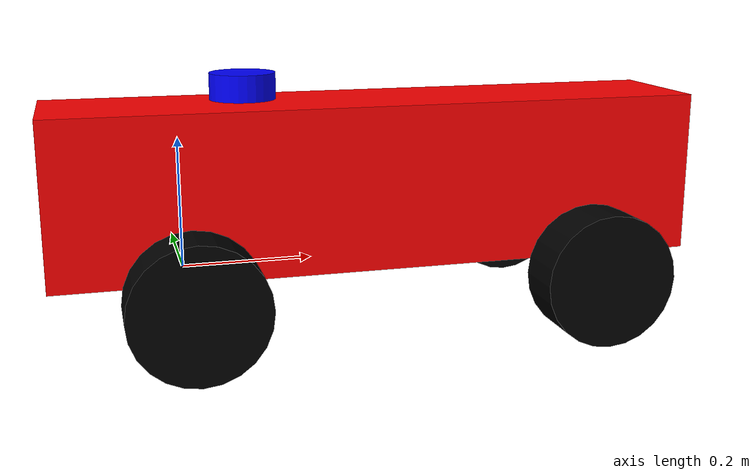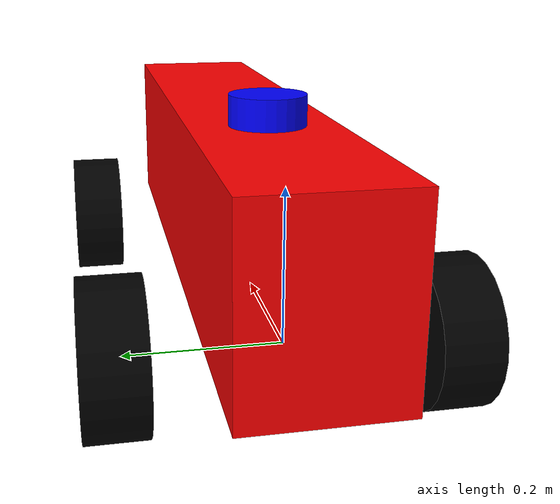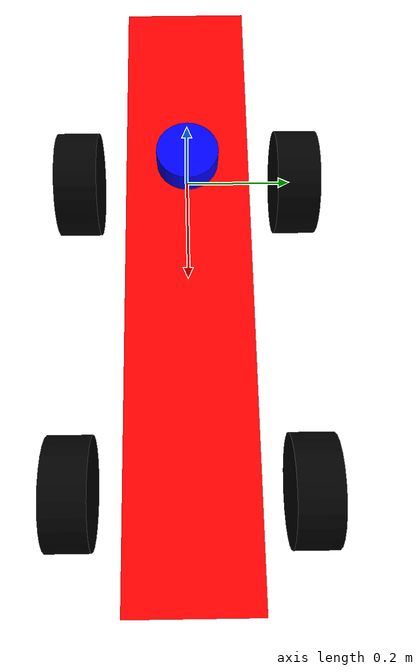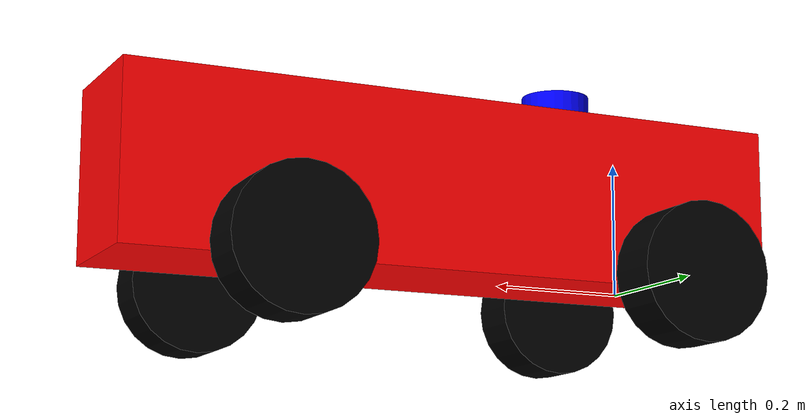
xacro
<?xml version="1.0"?>
<robot xmlns:xacro="http://www.ros.org/wiki/xacro"  name="robot">

    <xacro:arg name="use_ros2_control" default="true"/>
    <xacro:arg name="sim_mode" default="false"/>

    <xacro:include filename="robot_core.xacro" />

    <xacro:if value="$(arg use_ros2_control)">
        <xacro:include filename="ros2_control.xacro" />
    </xacro:if>
    <xacro:unless value="$(arg use_ros2_control)">
        <xacro:include filename="gazebo_control.xacro" />
    </xacro:unless>

    <xacro:include filename="lidar.xacro" />

</robot>

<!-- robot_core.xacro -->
<robot xmlns:xacro="http://www.ros.org/wiki/xacro" >

    <xacro:include filename="inertial_macros.xacro"/>

    <material name="white">
        <color rgba="1 1 1 1" />
    </material>

    <material name="red">
        <color rgba="1 0 0 1"/>
    </material>

    <material name="blue">
        <color rgba="0 0 1 1"/>
    </material>

    <material name="black">
        <color rgba="0 0 0 1"/>
    </material>

    <!-- BASE LINK -->

    <link name="base_link">

    </link>

    <!-- FOOTPRINT LINK -->

    <joint name="base_footprint_joint" type="fixed">
        <parent link="base_link" />
        <child link="base_footprint" />
        <origin xyz="-0.1 0 0" rpy="0 0 0" />
    </joint>

    <link name="base_footprint">

    </link>

    <!-- CHASSIS LINK -->

    <joint name="chassis_joint" type="fixed">
        <parent link="base_link"/>
        <child link="chassis"/>
        <origin xyz="0.3 0 0.125"/>
    </joint>

    <link name="chassis">
        <visual>
            <geometry>
                <box size="1 0.2 0.25"/>
            </geometry>
            <material name="red"/>
        </visual>
        <collision>
            <geometry>
                <box size="1 0.2 0.25"/>
            </geometry>
        </collision>
        <xacro:inertial_box mass="20" x="1" y="0.2" z="0.25">
            <origin xyz="0 0 0" rpy="0 0 0"/>
        </xacro:inertial_box>
    </link>

    <gazebo reference="chassis">
        <material>Gazebo/Red</material>
        <mu1>0.5</mu1>
        <mu2>0.5</mu2>
    </gazebo>

    <!-- FRONT LEFT WHEEL -->

    <!-- steering -->

    <joint name="front_left_steering_joint" type="revolute">
        <parent link="base_link"/>
        <child link="front_left_steering_link"/>
        <origin xyz="0.6 0.21 0" rpy="0 0 0"/>
        <axis xyz="0 0 1"/>
        <limit lower="-${pi/8}" upper="${pi/8}" effort="20" velocity="5"/>
    </joint>

    <link name="front_left_steering_link">
        <xacro:inertial_cylinder mass="0.01" radius="0.1" length="0.08">
            <origin xyz="0 0 0" rpy="${pi/2} 0 0"/>
        </xacro:inertial_cylinder>
    </link>

    <!-- rotation -->

    <joint name="front_left_wheel_joint" type="continuous">
        <parent link="front_left_steering_link"/>
        <child link="front_left_wheel"/>
        <origin xyz="0 0 0" rpy="${pi/2} 0 0"/>
        <axis xyz="0 0 -1"/>
        <dynamics friction="0.8" damping="0.5" /> <!-- TODO -->
        <limit lower="-3.14159" upper="3.14159" effort="0" velocity="1" /> <!-- TODO -->
    </joint>

    <link name="front_left_wheel">
        <visual>
            <origin xyz="0 0 0" rpy="0 0 0"/>
            <geometry>
                <cylinder radius="0.1" length="0.08"/>
            </geometry>
            <material name="black"/>
        </visual>
        <collision>
            <origin xyz="0 0 0" rpy="0 0 0"/>
            <geometry>
                <cylinder radius="0.1" length="0.08"/>
            </geometry>
        </collision>
        <xacro:inertial_cylinder mass="1" length="0.08" radius="0.1">
            <origin xyz="0 0 0" rpy="0 0 0"/>
        </xacro:inertial_cylinder>
    </link>

    <gazebo reference="front_left_wheel">
        <material>Gazebo/Black</material>
        <mu1>5</mu1>
        <mu2>5</mu2>
    </gazebo>

    <!-- FRONT RIGHT WHEEL -->

    <!-- steering -->

    <joint name="front_right_steering_joint" type="revolute">
        <parent link="base_link"/>
        <child link="front_right_steering_link"/>
        <origin xyz="0.6 -0.21 0" rpy="0 0 0"/>
        <axis xyz="0 0 1"/>
        <limit lower="-${pi/8}" upper="${pi/8}" effort="20" velocity="5"/>
    </joint>

    <link name="front_right_steering_link">
        <xacro:inertial_cylinder mass="0.01" radius="0.1" length="0.08">
            <origin xyz="0 0 0" rpy="${pi/2} 0 0"/>
        </xacro:inertial_cylinder>
    </link>

    <!-- rotation -->

    <joint name="front_right_wheel_joint" type="continuous">
        <parent link="front_right_steering_link"/>
        <child link="front_right_wheel"/>
        <origin xyz="0 0 0" rpy="${pi/2} 0 0"/>
        <axis xyz="0 0 -1"/>
        <dynamics friction="0.8" damping="0.5" /> <!-- TODO -->
        <limit lower="-3.14159" upper="3.14159" effort="0" velocity="1" /> <!-- TODO -->
    </joint>

    <link name="front_right_wheel">
        <visual>
            <origin xyz="0 0 0" rpy="0 0 0"/>
            <geometry>
                <cylinder radius="0.1" length="0.08"/>
            </geometry>
            <material name="black"/>
        </visual>
        <collision>
            <origin xyz="0 0 0" rpy="0 0 0"/>
            <geometry>
                <cylinder radius="0.1" length="0.08"/>
            </geometry>
        </collision>
        <xacro:inertial_cylinder mass="1" length="0.08" radius="0.1">
            <origin xyz="0 0 0" rpy="0 0 0"/>
        </xacro:inertial_cylinder>
    </link>

    <gazebo reference="front_right_wheel">
        <material>Gazebo/Black</material>
        <mu1>5</mu1>
        <mu2>5</mu2>
    </gazebo>

    <!-- REAR LEFT WHEEL -->

    <!-- rotation -->

    <joint name="rear_left_wheel_joint" type="continuous">
        <parent link="base_link"/>
        <child link="rear_left_wheel"/>
        <origin xyz="0 0.21 0" rpy="${pi/2} 0 0"/>
        <axis xyz="0 0 -1"/>
        <dynamics friction="0.8" damping="0.5" />
        <limit lower="-3.14159" upper="3.14159" effort="200" velocity="1" />
    </joint>

    <link name="rear_left_wheel">
        <visual>
            <origin xyz="0 0 0" rpy="0 0 0"/>
            <geometry>
                <cylinder radius="0.1" length="0.08"/>
            </geometry>
            <material name="black"/>
        </visual>
        <collision>
            <origin xyz="0 0 0" rpy="0 0 0"/>
            <geometry>
                <cylinder radius="0.1" length="0.08"/>
            </geometry>
        </collision>
        <xacro:inertial_cylinder mass="1" length="0.08" radius="0.1">
            <origin xyz="0 0 0" rpy="0 0 0"/>
        </xacro:inertial_cylinder>
    </link>

    <gazebo reference="rear_left_wheel">
        <material>Gazebo/Black</material>
        <mu1>10</mu1>
        <mu2>10</mu2>
    </gazebo>

    <!-- REAR RIGHT WHEEL -->

    <!-- rotation -->

    <joint name="rear_right_wheel_joint" type="continuous">
        <parent link="base_link"/>
        <child link="rear_right_wheel"/>
        <origin xyz="0 -0.21 0" rpy="-${pi/2} 0 0"/>
        <axis xyz="0 0 1"/>
        <dynamics friction="0.8" damping="0.5" />
        <limit lower="-3.14159" upper="3.14159" effort="200" velocity="1" />
    </joint>

    <link name="rear_right_wheel">
        <visual>
            <origin xyz="0 0 0" rpy="0 0 0"/>
            <geometry>
                <cylinder radius="0.1" length="0.08"/>
            </geometry>
            <material name="black"/>
        </visual>
        <collision>
            <origin xyz="0 0 0" rpy="0 0 0"/>
            <geometry>
                <cylinder radius="0.1" length="0.08"/>
            </geometry>
        </collision>
        <xacro:inertial_cylinder mass="1" length="0.08" radius="0.1">
            <origin xyz="0 0 0" rpy="0 0 0"/>
        </xacro:inertial_cylinder>
    </link>

    <gazebo reference="rear_right_wheel">
        <material>Gazebo/Black</material>
        <mu1>10</mu1>
        <mu2>10</mu2>
    </gazebo>

    <!-- VIRTUAL STEERING WHEEL -->

    <!-- TOCHECK -->

</robot>

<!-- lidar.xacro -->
<robot xmlns:xacro="http://www.ros.org/wiki/xacro"  name="robot">

    <joint name="laser_joint" type="fixed">
        <parent link="chassis"/>
        <child link="laser_frame"/>
        <origin xyz="-0.2 0 0.15" rpy="0 0 0"/>
    </joint>

    <link name="laser_frame">
        <visual>
            <geometry>
                <cylinder radius="0.05" length="0.04"/>
            </geometry>
            <material name="blue"/>
        </visual>
        <collision>
            <geometry>
                <cylinder radius="0.05" length="0.04"/>
            </geometry>
        </collision>
        <xacro:inertial_cylinder mass="0.1" length="0.04" radius="0.05">
            <origin xyz="0 0 0" rpy="0 0 0"/>
        </xacro:inertial_cylinder>
    </link>

    <gazebo reference="laser_frame">
        <material>Gazebo/Blue</material>

        <sensor name="laser" type="ray">
            <pose> 0 0 0 0 0 0 </pose>
            <visualize>true</visualize>
            <update_rate>20</update_rate>
            <ray>
                <scan>
                    <horizontal>
                        <samples>360</samples>
                        <min_angle>-3.14</min_angle>
                        <max_angle>3.14</max_angle>
                    </horizontal>
                </scan>
                <range>
                    <min>0.3</min>
                    <max>12</max>
                </range>
            </ray>
            <plugin name="laser_controller" filename="libgazebo_ros_ray_sensor.so">
                <ros>
                    <argument>~/out:=scan</argument>
                </ros>
                <output_type>sensor_msgs/LaserScan</output_type>
                <frame_name>laser_frame</frame_name>
            </plugin>
        </sensor>
    </gazebo>

</robot>
